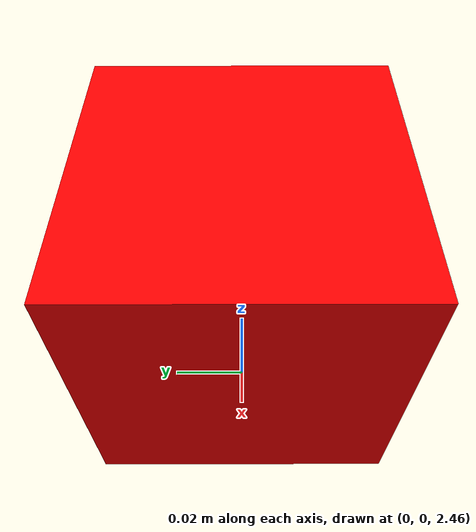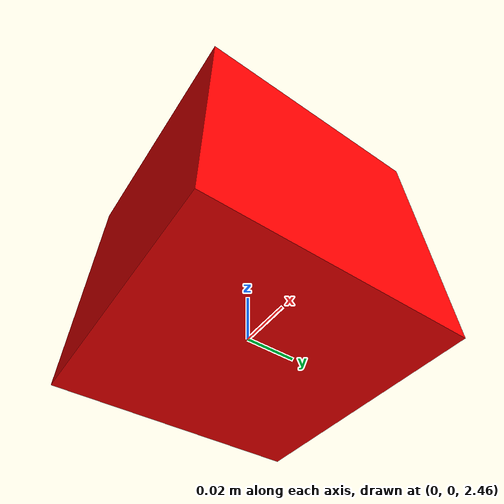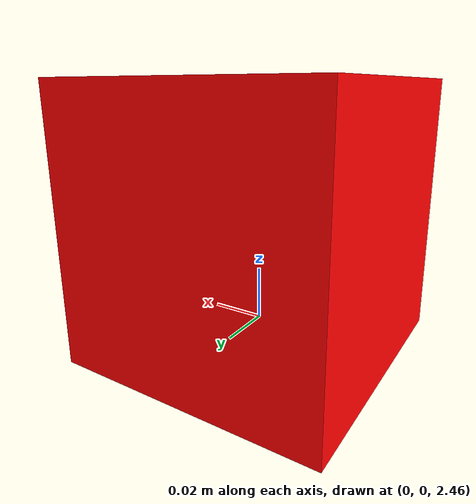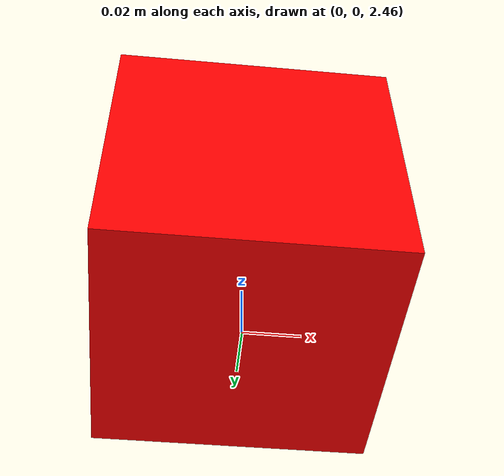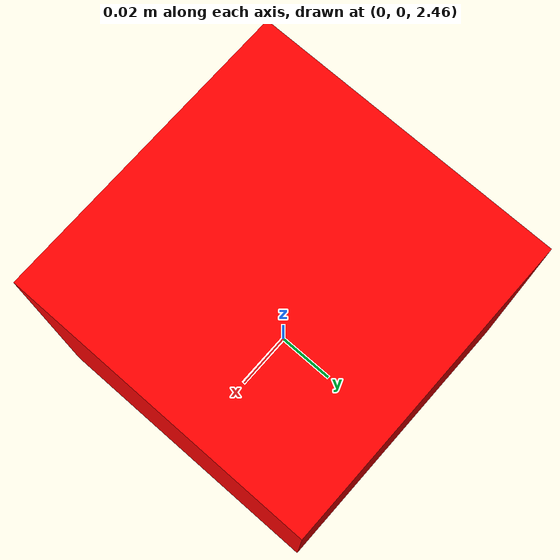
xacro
<?xml version="1.0"?>
<robot xmlns:xacro="http://www.ros.org/wiki/xacro" name="camera">

    <!-- Files to include -->
    <!-- Simple camera -->
    <!-- Kinect-like depth camera -->
    <xacro:include filename="depth_camera_gazebo.xacro"/>
    <xacro:include filename="../../mobile_platform/platform_description/urdf/materials.xacro"/>

    <!-- Define a property to indicate the size of the camera box -->
    <xacro:property name="camera_size" value="0.1"/>

    <!-- Camera description -->
    <!-- Links -->
    <!-- Define the world to fix the camera to it -->
    <link name="world"/>

    <!-- Camera link represented by a simple box -->
    <link name="camera_link">
        <visual>
            <geometry>
                <box size="${camera_size} ${camera_size} ${camera_size}"/>
            </geometry>
            <material name="red"/>
        </visual>
        <collision>
            <geometry>
                <box size="${camera_size} ${camera_size} ${camera_size}"/>
            </geometry>
        </collision>

        <inertial>
            <mass value="1e-5" />
            <inertia ixx="1e-6" ixy="0" ixz="0" iyy="1e-6" iyz="0" izz="1e-6" />
        </inertial>
    </link>

    <!-- Joints -->
    <!-- Fixing the camera to the world -->
    <joint name="fixed" type="fixed">
        <parent link="world"/>
        <child link="camera_link"/>
        <origin xyz ="0 0 2.5" rpy="0 1.57079632679 0"/>
    </joint>

</robot>

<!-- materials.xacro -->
<robot>

  <material name="red">
    <color rgba="1 0 0 1"/>
  </material>

  <material name="green">
    <color rgba="0 1 0 1"/>
  </material>

</robot>
